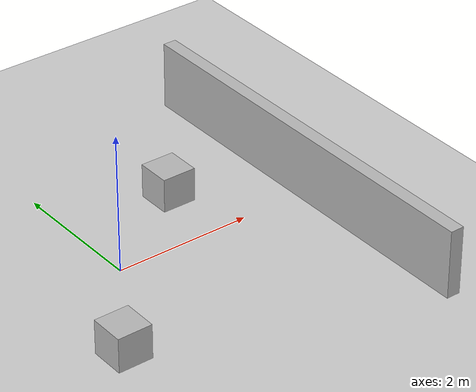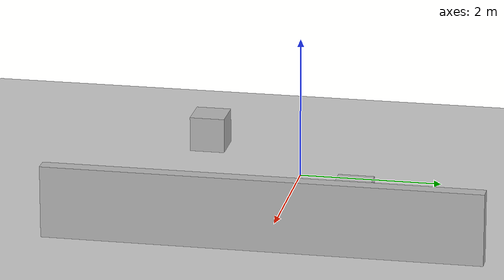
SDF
<?xml version="1.0" ?>
<sdf version="1.6">
  <world name="warehouse">
    <include><uri>model://sun</uri></include>
    <include><uri>model://ground_plane</uri></include>

    <physics type="ode">
      <max_step_size>0.001</max_step_size>
      <real_time_factor>1.0</real_time_factor>
      <real_time_update_rate>1000</real_time_update_rate>
    </physics>

    <!-- Simple obstacle field so Nav2's costmaps / recoveries have something to react to -->
    <model name="wall_1">
      <static>true</static>
      <pose>3 0 0.5 0 0 0</pose>
      <link name="link">
        <collision name="collision">
          <geometry><box><size>0.2 6 1</size></box></geometry>
        </collision>
        <visual name="visual">
          <geometry><box><size>0.2 6 1</size></box></geometry>
        </visual>
      </link>
    </model>

    <model name="box_obstacle_1">
      <static>true</static>
      <pose>1.5 1.0 0.25 0 0 0</pose>
      <link name="link">
        <collision name="collision">
          <geometry><box><size>0.5 0.5 0.5</size></box></geometry>
        </collision>
        <visual name="visual">
          <geometry><box><size>0.5 0.5 0.5</size></box></geometry>
        </visual>
      </link>
    </model>

    <model name="box_obstacle_2">
      <static>true</static>
      <pose>-1.0 -1.5 0.25 0 0 0</pose>
      <link name="link">
        <collision name="collision">
          <geometry><box><size>0.5 0.5 0.5</size></box></geometry>
        </collision>
        <visual name="visual">
          <geometry><box><size>0.5 0.5 0.5</size></box></geometry>
        </visual>
      </link>
    </model>
  </world>
</sdf>
